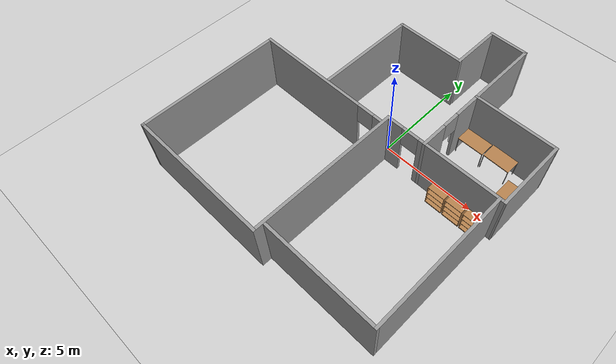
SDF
<sdf version="1.6">
 <world name="default">
  <model name="ground_plane">
   <static>1</static>
   <link name="link">
    <collision name="collision">
     <geometry><plane><normal>0 0 1</normal><size>100 100</size></plane></geometry>
     <surface><friction><ode><mu>100</mu><mu2>50</mu2></ode></friction></surface>
    </collision>
    <visual name="visual">
     <cast_shadows>0</cast_shadows>
     <geometry><plane><normal>0 0 1</normal><size>100 100</size></plane></geometry>
     <material>
      <script><uri>file://media/materials/scripts/gazebo.material</uri><name>Gazebo/Grey</name></script>
     </material>
    </visual>
   </link>
  </model>
  <model name="bh9f_lab">
   <pose>-0.31244 -0.65271 0 0 -0 0</pose>
   <link name="Wall_0">
    <pose>-3.1331 -0.253 0 0 -0 3.14159</pose>
    <visual name="Wall_0_Visual_0">
     <pose>-3.46145 0 1.55 0 -0 0</pose>
     <geometry><box><size>0.601096 0.15 3.1</size></box></geometry>
     <material>
      <script><uri>file://media/materials/scripts/gazebo.material</uri><name>Gazebo/Grey</name></script>
      <ambient>1 1 1 1</ambient>
     </material>
    </visual>
    <collision name="Wall_0_Collision_0">
     <geometry><box><size>0.601096 0.15 3.1</size></box></geometry>
     <pose>-3.46145 0 1.55 0 -0 0</pose>
    </collision>
    <visual name="Wall_0_Visual_1">
     <pose>0.750548 0 1.55 0 -0 0</pose>
     <geometry><box><size>6.0229 0.15 3.1</size></box></geometry>
     <material>
      <script><uri>file://media/materials/scripts/gazebo.material</uri><name>Gazebo/Grey</name></script>
      <ambient>1 1 1 1</ambient>
     </material>
    </visual>
    <collision name="Wall_0_Collision_1">
     <geometry><box><size>6.0229 0.15 3.1</size></box></geometry>
     <pose>0.750548 0 1.55 0 -0 0</pose>
    </collision>
    <visual name="Wall_0_Visual_3">
     <pose>-2.7109 0 2.55 0 -0 0</pose>
     <geometry><box><size>0.9 0.15 1.1</size></box></geometry>
     <material>
      <script><uri>file://media/materials/scripts/gazebo.material</uri><name>Gazebo/Grey</name></script>
      <ambient>1 1 1 1</ambient>
     </material>
    </visual>
    <collision name="Wall_0_Collision_3">
     <geometry><box><size>0.9 0.15 1.1</size></box></geometry>
     <pose>-2.7109 0 2.55 0 -0 0</pose>
    </collision>
   </link>
   <link name="Wall_12">
    <collision name="Wall_12_Collision">
     <geometry><box><size>7.44 0.15 3.1</size></box></geometry>
     <pose>0 0 1.55 0 -0 0</pose>
    </collision>
    <visual name="Wall_12_Visual">
     <pose>0 0 1.55 0 -0 0</pose>
     <geometry><box><size>7.44 0.15 3.1</size></box></geometry>
     <material>
      <script><uri>file://media/materials/scripts/gazebo.material</uri><name>Gazebo/Grey</name></script>
      <ambient>1 1 1 1</ambient>
     </material>
    </visual>
    <pose>6.5499 -3.516 0 0 0 -1.5708</pose>
   </link>
   <link name="Wall_14">
    <collision name="Wall_14_Collision">
     <geometry><box><size>6 0.15 3.1</size></box></geometry>
     <pose>0 0 1.55 0 -0 0</pose>
    </collision>
    <visual name="Wall_14_Visual">
     <pose>0 0 1.55 0 -0 0</pose>
     <geometry><box><size>6 0.15 3.1</size></box></geometry>
     <material>
      <script><uri>file://media/materials/scripts/gazebo.material</uri><name>Gazebo/Grey</name></script>
      <ambient>1 1 1 1</ambient>
     </material>
    </visual>
    <pose>3.6249 -7.161 0 0 -0 3.14159</pose>
   </link>
   <link name="Wall_16">
    <collision name="Wall_16_Collision">
     <geometry><box><size>3.83 0.15 3.1</size></box></geometry>
     <pose>0 0 1.55 0 -0 0</pose>
    </collision>
    <visual name="Wall_16_Visual">
     <pose>0 0 1.55 0 -0 0</pose>
     <geometry><box><size>3.83 0.15 3.1</size></box></geometry>
     <material>
      <script><uri>file://media/materials/scripts/gazebo.material</uri><name>Gazebo/Grey</name></script>
      <ambient>1 1 1 1</ambient>
     </material>
    </visual>
    <pose>6.8149 1.975 0 0 -0 1.56808</pose>
   </link>
   <link name="Wall_18">
    <collision name="Wall_18_Collision">
     <geometry><box><size>4.33 0.15 3.1</size></box></geometry>
     <pose>0 0 1.55 0 -0 0</pose>
    </collision>
    <visual name="Wall_18_Visual">
     <pose>0 0 1.55 0 -0 0</pose>
     <geometry><box><size>4.33 0.15 3.1</size></box></geometry>
     <material>
      <script><uri>file://media/materials/scripts/gazebo.material</uri><name>Gazebo/Grey</name></script>
      <ambient>1 1 1 1</ambient>
     </material>
    </visual>
    <pose>4.7299 3.815 0 0 -0 3.14159</pose>
   </link>
   <link name="Wall_2">
    <collision name="Wall_2_Collision">
     <geometry><box><size>7.542 0.15 3.1</size></box></geometry>
     <pose>0 0 1.55 0 -0 0</pose>
    </collision>
    <visual name="Wall_2_Visual">
     <pose>0 0 1.55 0 -0 0</pose>
     <geometry><box><size>7.542 0.15 3.1</size></box></geometry>
     <material>
      <script><uri>file://media/materials/scripts/gazebo.material</uri><name>Gazebo/Grey</name></script>
      <ambient>1 1 1 1</ambient>
     </material>
    </visual>
    <pose>-6.8201 -3.949 0 0 0 -1.5708</pose>
   </link>
   <link name="Wall_20">
    <pose>2.6379 3.89 0 0 -0 1.5708</pose>
    <visual name="Wall_20_Visual_0">
     <pose>-3.11825 0 1.55 0 -0 0</pose>
     <geometry><box><size>1.42351 0.15 3.1</size></box></geometry>
     <material>
      <script><uri>file://media/materials/scripts/gazebo.material</uri><name>Gazebo/Grey</name></script>
      <ambient>1 1 1 1</ambient>
     </material>
    </visual>
    <collision name="Wall_20_Collision_0">
     <geometry><box><size>1.42351 0.15 3.1</size></box></geometry>
     <pose>-3.11825 0 1.55 0 -0 0</pose>
    </collision>
    <visual name="Wall_20_Visual_1">
     <pose>1.16175 0 1.55 0 -0 0</pose>
     <geometry><box><size>5.33649 0.15 3.1</size></box></geometry>
     <material>
      <script><uri>file://media/materials/scripts/gazebo.material</uri><name>Gazebo/Grey</name></script>
      <ambient>1 1 1 1</ambient>
     </material>
    </visual>
    <collision name="Wall_20_Collision_1">
     <geometry><box><size>5.33649 0.15 3.1</size></box></geometry>
     <pose>1.16175 0 1.55 0 -0 0</pose>
    </collision>
    <visual name="Wall_20_Visual_3">
     <pose>-1.95649 0 2.55 0 -0 0</pose>
     <geometry><box><size>0.9 0.15 1.1</size></box></geometry>
     <material>
      <script><uri>file://media/materials/scripts/gazebo.material</uri><name>Gazebo/Grey</name></script>
      <ambient>1 1 1 1</ambient>
     </material>
    </visual>
    <collision name="Wall_20_Collision_3">
     <geometry><box><size>0.9 0.15 1.1</size></box></geometry>
     <pose>-1.95649 0 2.55 0 -0 0</pose>
    </collision>
   </link>
   <link name="Wall_24">
    <collision name="Wall_24_Collision">
     <geometry><box><size>2.089 0.15 3.1</size></box></geometry>
     <pose>0 0 1.55 0 -0 0</pose>
    </collision>
    <visual name="Wall_24_Visual">
     <pose>0 0 1.55 0 -0 0</pose>
     <geometry><box><size>2.089 0.15 3.1</size></box></geometry>
     <material>
      <script><uri>file://media/materials/scripts/gazebo.material</uri><name>Gazebo/Grey</name></script>
      <ambient>1 1 1 1</ambient>
     </material>
    </visual>
    <pose>1.6684 7.645 0 0 -0 3.14159</pose>
   </link>
   <link name="Wall_26">
    <collision name="Wall_26_Collision">
     <geometry><box><size>2.75 0.15 3.1</size></box></geometry>
     <pose>0 0 1.55 0 -0 0</pose>
    </collision>
    <visual name="Wall_26_Visual">
     <pose>0 0 1.55 0 -0 0</pose>
     <geometry><box><size>2.75 0.15 3.1</size></box></geometry>
     <material>
      <script><uri>file://media/materials/scripts/gazebo.material</uri><name>Gazebo/Grey</name></script>
      <ambient>1 1 1 1</ambient>
     </material>
    </visual>
    <pose>0.698898 6.345 0 0 0 -1.5708</pose>
   </link>
   <link name="Wall_28">
    <collision name="Wall_28_Collision">
     <geometry><box><size>3.75 0.15 3.1</size></box></geometry>
     <pose>0 0 1.55 0 -0 0</pose>
    </collision>
    <visual name="Wall_28_Visual">
     <pose>0 0 1.55 0 -0 0</pose>
     <geometry><box><size>3.75 0.15 3.1</size></box></geometry>
     <material>
      <script><uri>file://media/materials/scripts/gazebo.material</uri><name>Gazebo/Grey</name></script>
      <ambient>1 1 1 1</ambient>
     </material>
    </visual>
    <pose>-1.1011 5.045 0 0 -0 3.14159</pose>
   </link>
   <link name="Wall_30">
    <collision name="Wall_30_Collision">
     <geometry><box><size>5.41 0.15 3.1</size></box></geometry>
     <pose>0 0 1.55 0 -0 0</pose>
    </collision>
    <visual name="Wall_30_Visual">
     <pose>0 0 1.55 0 -0 0</pose>
     <geometry><box><size>5.41 0.15 3.1</size></box></geometry>
     <material>
      <script><uri>file://media/materials/scripts/gazebo.material</uri><name>Gazebo/Grey</name></script>
      <ambient>1 1 1 1</ambient>
     </material>
    </visual>
    <pose>-2.9011 2.415 0 0 0 -1.5708</pose>
   </link>
   <link name="Wall_4">
    <collision name="Wall_4_Collision">
     <geometry><box><size>7.53 0.15 3.1</size></box></geometry>
     <pose>0 0 1.55 0 -0 0</pose>
    </collision>
    <visual name="Wall_4_Visual">
     <pose>0 0 1.55 0 -0 0</pose>
     <geometry><box><size>7.53 0.15 3.1</size></box></geometry>
     <material>
      <script><uri>file://media/materials/scripts/gazebo.material</uri><name>Gazebo/Grey</name></script>
      <ambient>1 1 1 1</ambient>
     </material>
    </visual>
    <pose>-3.1301 -7.645 0 0 -0 0</pose>
   </link>
   <link name="Wall_6">
    <collision name="Wall_6_Collision">
     <geometry><box><size>7.93 0.15 3.1</size></box></geometry>
     <pose>0 0 1.55 0 -0 0</pose>
    </collision>
    <visual name="Wall_6_Visual">
     <pose>0 0 1.55 0 -0 0</pose>
     <geometry><box><size>7.93 0.15 3.1</size></box></geometry>
     <material>
      <script><uri>file://media/materials/scripts/gazebo.material</uri><name>Gazebo/Grey</name></script>
      <ambient>1 1 1 1</ambient>
     </material>
    </visual>
    <pose>0.559898 -3.755 0 0 -0 1.5708</pose>
   </link>
   <link name="Wall_8">
    <pose>3.6849 0.135 0 0 -0 0</pose>
    <visual name="Wall_8_Visual_0">
     <pose>-2.73161 0 1.55 0 -0 0</pose>
     <geometry><box><size>0.936778 0.15 3.1</size></box></geometry>
     <material>
      <script><uri>file://media/materials/scripts/gazebo.material</uri><name>Gazebo/Grey</name></script>
      <ambient>1 1 1 1</ambient>
     </material>
    </visual>
    <collision name="Wall_8_Collision_0">
     <geometry><box><size>0.936778 0.15 3.1</size></box></geometry>
     <pose>-2.73161 0 1.55 0 -0 0</pose>
    </collision>
    <visual name="Wall_8_Visual_1">
     <pose>0.918389 0 1.55 0 -0 0</pose>
     <geometry><box><size>4.56322 0.15 3.1</size></box></geometry>
     <material>
      <script><uri>file://media/materials/scripts/gazebo.material</uri><name>Gazebo/Grey</name></script>
      <ambient>1 1 1 1</ambient>
     </material>
    </visual>
    <collision name="Wall_8_Collision_1">
     <geometry><box><size>4.56322 0.15 3.1</size></box></geometry>
     <pose>0.918389 0 1.55 0 -0 0</pose>
    </collision>
    <visual name="Wall_8_Visual_3">
     <pose>-1.81322 0 2.55 0 -0 0</pose>
     <geometry><box><size>0.9 0.15 1.1</size></box></geometry>
     <material>
      <script><uri>file://media/materials/scripts/gazebo.material</uri><name>Gazebo/Grey</name></script>
      <ambient>1 1 1 1</ambient>
     </material>
    </visual>
    <collision name="Wall_8_Collision_3">
     <geometry><box><size>0.9 0.15 1.1</size></box></geometry>
     <pose>-1.81322 0 2.55 0 -0 0</pose>
    </collision>
   </link>
   <static>1</static>
  </model>
  <model name="bookcase">
   <link name="dummy_link">
    <inertial>
     <pose>0 0 0.335152 0 -0 0</pose>
     <mass>33</mass>
     <inertia>
      <ixx>7.54617</ixx>
      <ixy>0</ixy>
      <ixz>0</ixz>
      <iyy>2.12412</iyy>
      <iyz>1.60768e-16</iyz>
      <izz>5.42205</izz>
     </inertia>
    </inertial>
    <collision name="dummy_link_fixed_joint_lump__bookcase_bottom_link_collision_1">
     <pose>0 0 0.025 0 -0 0</pose>
     <geometry><box><size>0.39 1.39 0.05</size></box></geometry>
    </collision>
    <collision name="dummy_link_fixed_joint_lump__separation_4_link_collision_2">
     <pose>0 -0.345 0.21875 0 -0 0</pose>
     <geometry><box><size>0.39 0.015 0.33</size></box></geometry>
    </collision>
    <collision name="dummy_link_fixed_joint_lump__separation_5_link_collision_3">
     <pose>0 0 0.21875 0 -0 0</pose>
     <geometry><box><size>0.39 0.015 0.33</size></box></geometry>
    </collision>
    <collision name="dummy_link_fixed_joint_lump__separation_6_link_collision_4">
     <pose>0 0.345 0.21875 0 -0 0</pose>
     <geometry><box><size>0.39 0.015 0.33</size></box></geometry>
    </collision>
    <collision name="dummy_link_fixed_joint_lump__bookcase_left_collision_5">
     <pose>0 -0.72 0.395 0 -0 0</pose>
     <geometry><box><size>0.39 0.05 0.79</size></box></geometry>
    </collision>
    <collision name="dummy_link_fixed_joint_lump__bookcase_middle_collision_6">
     <pose>0 0 0.395 0 -0 0</pose>
     <geometry><box><size>0.39 1.39 0.015</size></box></geometry>
    </collision>
    <collision name="dummy_link_fixed_joint_lump__bookcase_right_collision_7">
     <pose>0 0.72 0.395 0 -0 0</pose>
     <geometry><box><size>0.39 0.05 0.79</size></box></geometry>
    </collision>
    <collision name="dummy_link_fixed_joint_lump__bookcase_top_link_collision_8">
     <pose>0 0 0.765 0 -0 0</pose>
     <geometry><box><size>0.39 1.39 0.05</size></box></geometry>
    </collision>
    <collision name="dummy_link_fixed_joint_lump__separation_1_link_collision_9">
     <pose>0 -0.345 0.57125 0 -0 0</pose>
     <geometry><box><size>0.39 0.015 0.33</size></box></geometry>
    </collision>
    <collision name="dummy_link_fixed_joint_lump__separation_2_link_collision_10">
     <pose>0 0 0.57125 0 -0 0</pose>
     <geometry><box><size>0.39 0.015 0.33</size></box></geometry>
    </collision>
    <collision name="dummy_link_fixed_joint_lump__separation_3_link_collision_11">
     <pose>0 0.345 0.57125 0 -0 0</pose>
     <geometry><box><size>0.39 0.015 0.33</size></box></geometry>
    </collision>
    <visual name="dummy_link_fixed_joint_lump__bookcase_bottom_link_visual_1">
     <pose>0 0 0.025 0 -0 0</pose>
     <geometry><box><size>0.39 1.39 0.05</size></box></geometry>
     <material>
      <script><name>Gazebo/White</name><uri>file://media/materials/scripts/gazebo.material</uri></script>
     </material>
    </visual>
    <visual name="dummy_link_fixed_joint_lump__separation_4_link_visual_2">
     <pose>0 -0.345 0.21875 0 -0 0</pose>
     <geometry><box><size>0.39 0.015 0.3375</size></box></geometry>
    </visual>
    <visual name="dummy_link_fixed_joint_lump__separation_5_link_visual_3">
     <pose>0 0 0.21875 0 -0 0</pose>
     <geometry><box><size>0.39 0.015 0.3375</size></box></geometry>
    </visual>
    <visual name="dummy_link_fixed_joint_lump__separation_6_link_visual_4">
     <pose>0 0.345 0.21875 0 -0 0</pose>
     <geometry><box><size>0.39 0.015 0.3375</size></box></geometry>
    </visual>
    <visual name="dummy_link_fixed_joint_lump__bookcase_left_visual_5">
     <pose>0 -0.72 0.395 0 -0 0</pose>
     <geometry><box><size>0.39 0.05 0.79</size></box></geometry>
     <material>
      <script><name>Gazebo/White</name><uri>file://media/materials/scripts/gazebo.material</uri></script>
     </material>
    </visual>
    <visual name="dummy_link_fixed_joint_lump__bookcase_middle_visual_6">
     <pose>0 0 0.395 0 -0 0</pose>
     <geometry><box><size>0.39 1.39 0.015</size></box></geometry>
     <material>
      <script><name>Gazebo/White</name><uri>file://media/materials/scripts/gazebo.material</uri></script>
     </material>
    </visual>
    <visual name="dummy_link_fixed_joint_lump__bookcase_right_visual_7">
     <pose>0 0.72 0.395 0 -0 0</pose>
     <geometry><box><size>0.39 0.05 0.79</size></box></geometry>
     <material>
      <script><name>Gazebo/White</name><uri>file://media/materials/scripts/gazebo.material</uri></script>
     </material>
    </visual>
    <visual name="dummy_link_fixed_joint_lump__bookcase_top_link_visual_8">
     <pose>0 0 0.765 0 -0 0</pose>
     <geometry><box><size>0.39 1.39 0.05</size></box></geometry>
     <material>
      <script><name>Gazebo/White</name><uri>file://media/materials/scripts/gazebo.material</uri></script>
     </material>
    </visual>
    <visual name="dummy_link_fixed_joint_lump__separation_1_link_visual_9">
     <pose>0 -0.345 0.57125 0 -0 0</pose>
     <geometry><box><size>0.39 0.015 0.3375</size></box></geometry>
    </visual>
    <visual name="dummy_link_fixed_joint_lump__separation_2_link_visual_10">
     <pose>0 0 0.57125 0 -0 0</pose>
     <geometry><box><size>0.39 0.015 0.3375</size></box></geometry>
    </visual>
    <visual name="dummy_link_fixed_joint_lump__separation_3_link_visual_11">
     <pose>0 0.345 0.57125 0 -0 0</pose>
     <geometry><box><size>0.39 0.015 0.3375</size></box></geometry>
    </visual>
   </link>
   <pose>2.03555 3.11584 -4e-06 -4e-06 -6e-06 -0.005442</pose>
  </model>
  <model name="table">
   <static>0</static>
   <link name="link">
    <collision name="surface">
     <pose>0 0 1 0 -0 0</pose>
     <geometry><box><size>1.5 0.8 0.03</size></box></geometry>
     <surface><friction><ode><mu>0.6</mu><mu2>0.6</mu2></ode></friction></surface>
    </collision>
    <visual name="visual1">
     <pose>0 0 1 0 -0 0</pose>
     <geometry><box><size>1.4 0.8 0.04</size></box></geometry>
     <material>
      <script><uri>file://media/materials/scripts/gazebo.material</uri><name>Gazebo/Wood</name></script>
     </material>
    </visual>
    <collision name="front_left_leg">
     <pose>0.68 0.38 0.5 0 -0 0</pose>
     <geometry><cylinder><radius>0.02</radius><length>1</length></cylinder></geometry>
    </collision>
    <visual name="front_left_leg">
     <pose>0.68 0.38 0.5 0 -0 0</pose>
     <geometry><cylinder><radius>0.02</radius><length>1</length></cylinder></geometry>
     <material>
      <script><uri>file://media/materials/scripts/gazebo.material</uri><name>Gazebo/Grey</name></script>
     </material>
    </visual>
    <collision name="front_right_leg">
     <pose>0.68 -0.38 0.5 0 -0 0</pose>
     <geometry><cylinder><radius>0.02</radius><length>1</length></cylinder></geometry>
    </collision>
    <visual name="front_right_leg">
     <pose>0.68 -0.38 0.5 0 -0 0</pose>
     <geometry><cylinder><radius>0.02</radius><length>1</length></cylinder></geometry>
     <material>
      <script><uri>file://media/materials/scripts/gazebo.material</uri><name>Gazebo/Grey</name></script>
     </material>
    </visual>
    <collision name="back_right_leg">
     <pose>-0.68 -0.38 0.5 0 -0 0</pose>
     <geometry><cylinder><radius>0.02</radius><length>1</length></cylinder></geometry>
    </collision>
    <visual name="back_right_leg">
     <pose>-0.68 -0.38 0.5 0 -0 0</pose>
     <geometry><cylinder><radius>0.02</radius><length>1</length></cylinder></geometry>
     <material>
      <script><uri>file://media/materials/scripts/gazebo.material</uri><name>Gazebo/Grey</name></script>
     </material>
    </visual>
    <collision name="back_left_leg">
     <pose>-0.68 0.38 0.5 0 -0 0</pose>
     <geometry><cylinder><radius>0.02</radius><length>1</length></cylinder></geometry>
    </collision>
    <visual name="back_left_leg">
     <pose>-0.68 0.38 0.5 0 -0 0</pose>
     <geometry><cylinder><radius>0.02</radius><length>1</length></cylinder></geometry>
     <material>
      <script><uri>file://media/materials/scripts/gazebo.material</uri><name>Gazebo/Grey</name></script>
     </material>
    </visual>
    <inertial>
     <inertia><ixx>1</ixx><ixy>0</ixy><ixz>0</ixz><iyy>1</iyy><iyz>0</iyz><izz>1</izz></inertia>
     <mass>1</mass>
    </inertial>
   </link>
   <pose>4.57969 2.60173 0.015107 5e-06 0.02158 -5e-06</pose>
  </model>
  <model name="table_clone">
   <static>0</static>
   <link name="link">
    <collision name="surface">
     <pose>0 0 1 0 -0 0</pose>
     <geometry><box><size>1.5 0.8 0.03</size></box></geometry>
     <surface><friction><ode><mu>0.6</mu><mu2>0.6</mu2></ode></friction></surface>
    </collision>
    <visual name="visual1">
     <pose>0 0 1 0 -0 0</pose>
     <geometry><box><size>1.4 0.8 0.04</size></box></geometry>
     <material>
      <script><uri>file://media/materials/scripts/gazebo.material</uri><name>Gazebo/Wood</name></script>
     </material>
    </visual>
    <collision name="front_left_leg">
     <pose>0.68 0.38 0.5 0 -0 0</pose>
     <geometry><cylinder><radius>0.02</radius><length>1</length></cylinder></geometry>
    </collision>
    <visual name="front_left_leg">
     <pose>0.68 0.38 0.5 0 -0 0</pose>
     <geometry><cylinder><radius>0.02</radius><length>1</length></cylinder></geometry>
     <material>
      <script><uri>file://media/materials/scripts/gazebo.material</uri><name>Gazebo/Grey</name></script>
     </material>
    </visual>
    <collision name="front_right_leg">
     <pose>0.68 -0.38 0.5 0 -0 0</pose>
     <geometry><cylinder><radius>0.02</radius><length>1</length></cylinder></geometry>
    </collision>
    <visual name="front_right_leg">
     <pose>0.68 -0.38 0.5 0 -0 0</pose>
     <geometry><cylinder><radius>0.02</radius><length>1</length></cylinder></geometry>
     <material>
      <script><uri>file://media/materials/scripts/gazebo.material</uri><name>Gazebo/Grey</name></script>
     </material>
    </visual>
    <collision name="back_right_leg">
     <pose>-0.68 -0.38 0.5 0 -0 0</pose>
     <geometry><cylinder><radius>0.02</radius><length>1</length></cylinder></geometry>
    </collision>
    <visual name="back_right_leg">
     <pose>-0.68 -0.38 0.5 0 -0 0</pose>
     <geometry><cylinder><radius>0.02</radius><length>1</length></cylinder></geometry>
     <material>
      <script><uri>file://media/materials/scripts/gazebo.material</uri><name>Gazebo/Grey</name></script>
     </material>
    </visual>
    <collision name="back_left_leg">
     <pose>-0.68 0.38 0.5 0 -0 0</pose>
     <geometry><cylinder><radius>0.02</radius><length>1</length></cylinder></geometry>
    </collision>
    <visual name="back_left_leg">
     <pose>-0.68 0.38 0.5 0 -0 0</pose>
     <geometry><cylinder><radius>0.02</radius><length>1</length></cylinder></geometry>
     <material>
      <script><uri>file://media/materials/scripts/gazebo.material</uri><name>Gazebo/Grey</name></script>
     </material>
    </visual>
    <inertial>
     <inertia><ixx>1</ixx><ixy>0</ixy><ixz>0</ixz><iyy>1</iyy><iyz>0</iyz><izz>1</izz></inertia>
     <mass>1</mass>
    </inertial>
   </link>
   <pose>3.15046 2.58517 -3e-06 -1e-06 -4e-06 5e-06</pose>
  </model>
  <model name="table_clone_0">
   <static>0</static>
   <link name="link">
    <collision name="surface">
     <pose>0 0 1 0 -0 0</pose>
     <geometry><box><size>1.5 0.8 0.03</size></box></geometry>
     <surface><friction><ode><mu>0.6</mu><mu2>0.6</mu2></ode></friction></surface>
    </collision>
    <visual name="visual1">
     <pose>0 0 1 0 -0 0</pose>
     <geometry><box><size>1.4 0.8 0.04</size></box></geometry>
     <material>
      <script><uri>file://media/materials/scripts/gazebo.material</uri><name>Gazebo/Wood</name></script>
     </material>
    </visual>
    <collision name="front_left_leg">
     <pose>0.68 0.38 0.5 0 -0 0</pose>
     <geometry><cylinder><radius>0.02</radius><length>1</length></cylinder></geometry>
    </collision>
    <visual name="front_left_leg">
     <pose>0.68 0.38 0.5 0 -0 0</pose>
     <geometry><cylinder><radius>0.02</radius><length>1</length></cylinder></geometry>
     <material>
      <script><uri>file://media/materials/scripts/gazebo.material</uri><name>Gazebo/Grey</name></script>
     </material>
    </visual>
    <collision name="front_right_leg">
     <pose>0.68 -0.38 0.5 0 -0 0</pose>
     <geometry><cylinder><radius>0.02</radius><length>1</length></cylinder></geometry>
    </collision>
    <visual name="front_right_leg">
     <pose>0.68 -0.38 0.5 0 -0 0</pose>
     <geometry><cylinder><radius>0.02</radius><length>1</length></cylinder></geometry>
     <material>
      <script><uri>file://media/materials/scripts/gazebo.material</uri><name>Gazebo/Grey</name></script>
     </material>
    </visual>
    <collision name="back_right_leg">
     <pose>-0.68 -0.38 0.5 0 -0 0</pose>
     <geometry><cylinder><radius>0.02</radius><length>1</length></cylinder></geometry>
    </collision>
    <visual name="back_right_leg">
     <pose>-0.68 -0.38 0.5 0 -0 0</pose>
     <geometry><cylinder><radius>0.02</radius><length>1</length></cylinder></geometry>
     <material>
      <script><uri>file://media/materials/scripts/gazebo.material</uri><name>Gazebo/Grey</name></script>
     </material>
    </visual>
    <collision name="back_left_leg">
     <pose>-0.68 0.38 0.5 0 -0 0</pose>
     <geometry><cylinder><radius>0.02</radius><length>1</length></cylinder></geometry>
    </collision>
    <visual name="back_left_leg">
     <pose>-0.68 0.38 0.5 0 -0 0</pose>
     <geometry><cylinder><radius>0.02</radius><length>1</length></cylinder></geometry>
     <material>
      <script><uri>file://media/materials/scripts/gazebo.material</uri><name>Gazebo/Grey</name></script>
     </material>
    </visual>
    <inertial>
     <inertia><ixx>1</ixx><ixy>0</ixy><ixz>0</ixz><iyy>1</iyy><iyz>0</iyz><izz>1</izz></inertia>
     <mass>1</mass>
    </inertial>
   </link>
   <pose>5.67387 0.001172 -2.7e-05 -1e-06 -3e-06 -0.002717</pose>
  </model>
  <model name="table_clone_1">
   <static>0</static>
   <link name="link">
    <collision name="surface">
     <pose>0 0 1 0 -0 0</pose>
     <geometry><box><size>1.5 0.8 0.03</size></box></geometry>
     <surface><friction><ode><mu>0.6</mu><mu2>0.6</mu2></ode></friction></surface>
    </collision>
    <visual name="visual1">
     <pose>0 0 1 0 -0 0</pose>
     <geometry><box><size>1.4 0.8 0.04</size></box></geometry>
     <material>
      <script><uri>file://media/materials/scripts/gazebo.material</uri><name>Gazebo/Wood</name></script>
     </material>
    </visual>
    <collision name="front_left_leg">
     <pose>0.68 0.38 0.5 0 -0 0</pose>
     <geometry><cylinder><radius>0.02</radius><length>1</length></cylinder></geometry>
    </collision>
    <visual name="front_left_leg">
     <pose>0.68 0.38 0.5 0 -0 0</pose>
     <geometry><cylinder><radius>0.02</radius><length>1</length></cylinder></geometry>
     <material>
      <script><uri>file://media/materials/scripts/gazebo.material</uri><name>Gazebo/Grey</name></script>
     </material>
    </visual>
    <collision name="front_right_leg">
     <pose>0.68 -0.38 0.5 0 -0 0</pose>
     <geometry><cylinder><radius>0.02</radius><length>1</length></cylinder></geometry>
    </collision>
    <visual name="front_right_leg">
     <pose>0.68 -0.38 0.5 0 -0 0</pose>
     <geometry><cylinder><radius>0.02</radius><length>1</length></cylinder></geometry>
     <material>
      <script><uri>file://media/materials/scripts/gazebo.material</uri><name>Gazebo/Grey</name></script>
     </material>
    </visual>
    <collision name="back_right_leg">
     <pose>-0.68 -0.38 0.5 0 -0 0</pose>
     <geometry><cylinder><radius>0.02</radius><length>1</length></cylinder></geometry>
    </collision>
    <visual name="back_right_leg">
     <pose>-0.68 -0.38 0.5 0 -0 0</pose>
     <geometry><cylinder><radius>0.02</radius><length>1</length></cylinder></geometry>
     <material>
      <script><uri>file://media/materials/scripts/gazebo.material</uri><name>Gazebo/Grey</name></script>
     </material>
    </visual>
    <collision name="back_left_leg">
     <pose>-0.68 0.38 0.5 0 -0 0</pose>
     <geometry><cylinder><radius>0.02</radius><length>1</length></cylinder></geometry>
    </collision>
    <visual name="back_left_leg">
     <pose>-0.68 0.38 0.5 0 -0 0</pose>
     <geometry><cylinder><radius>0.02</radius><length>1</length></cylinder></geometry>
     <material>
      <script><uri>file://media/materials/scripts/gazebo.material</uri><name>Gazebo/Grey</name></script>
     </material>
    </visual>
    <inertial>
     <inertia><ixx>1</ixx><ixy>0</ixy><ixz>0</ixz><iyy>1</iyy><iyz>0</iyz><izz>1</izz></inertia>
     <mass>1</mass>
    </inertial>
   </link>
   <pose>4.2446 -0.006714 0.015089 -1e-06 -0.021568 -0.002717</pose>
  </model>
  <model name="table_clone_2">
   <static>0</static>
   <link name="link">
    <collision name="surface">
     <pose>0 0 1 0 -0 0</pose>
     <geometry><box><size>1.5 0.8 0.03</size></box></geometry>
     <surface><friction><ode><mu>0.6</mu><mu2>0.6</mu2></ode></friction></surface>
    </collision>
    <visual name="visual1">
     <pose>0 0 1 0 -0 0</pose>
     <geometry><box><size>1.4 0.8 0.04</size></box></geometry>
     <material>
      <script><uri>file://media/materials/scripts/gazebo.material</uri><name>Gazebo/Wood</name></script>
     </material>
    </visual>
    <collision name="front_left_leg">
     <pose>0.68 0.38 0.5 0 -0 0</pose>
     <geometry><cylinder><radius>0.02</radius><length>1</length></cylinder></geometry>
    </collision>
    <visual name="front_left_leg">
     <pose>0.68 0.38 0.5 0 -0 0</pose>
     <geometry><cylinder><radius>0.02</radius><length>1</length></cylinder></geometry>
     <material>
      <script><uri>file://media/materials/scripts/gazebo.material</uri><name>Gazebo/Grey</name></script>
     </material>
    </visual>
    <collision name="front_right_leg">
     <pose>0.68 -0.38 0.5 0 -0 0</pose>
     <geometry><cylinder><radius>0.02</radius><length>1</length></cylinder></geometry>
    </collision>
    <visual name="front_right_leg">
     <pose>0.68 -0.38 0.5 0 -0 0</pose>
     <geometry><cylinder><radius>0.02</radius><length>1</length></cylinder></geometry>
     <material>
      <script><uri>file://media/materials/scripts/gazebo.material</uri><name>Gazebo/Grey</name></script>
     </material>
    </visual>
    <collision name="back_right_leg">
     <pose>-0.68 -0.38 0.5 0 -0 0</pose>
     <geometry><cylinder><radius>0.02</radius><length>1</length></cylinder></geometry>
    </collision>
    <visual name="back_right_leg">
     <pose>-0.68 -0.38 0.5 0 -0 0</pose>
     <geometry><cylinder><radius>0.02</radius><length>1</length></cylinder></geometry>
     <material>
      <script><uri>file://media/materials/scripts/gazebo.material</uri><name>Gazebo/Grey</name></script>
     </material>
    </visual>
    <collision name="back_left_leg">
     <pose>-0.68 0.38 0.5 0 -0 0</pose>
     <geometry><cylinder><radius>0.02</radius><length>1</length></cylinder></geometry>
    </collision>
    <visual name="back_left_leg">
     <pose>-0.68 0.38 0.5 0 -0 0</pose>
     <geometry><cylinder><radius>0.02</radius><length>1</length></cylinder></geometry>
     <material>
      <script><uri>file://media/materials/scripts/gazebo.material</uri><name>Gazebo/Grey</name></script>
     </material>
    </visual>
    <inertial>
     <inertia><ixx>1</ixx><ixy>0</ixy><ixz>0</ixz><iyy>1</iyy><iyz>0</iyz><izz>1</izz></inertia>
     <mass>1</mass>
    </inertial>
   </link>
   <pose>5.94644 1.1813 -3e-06 -0 -4e-06 -1.56858</pose>
  </model>
  <model name="bookshelf_0">
   <static>1</static>
   <link name="link">
    <inertial><mass>1</mass></inertial>
    <collision name="back">
     <pose>0 0.005 0.6 0 -0 0</pose>
     <geometry><box><size>0.9 0.01 1.2</size></box></geometry>
    </collision>
    <visual name="visual1">
     <pose>0 0.005 0.6 0 -0 0</pose>
     <geometry><box><size>0.9 0.01 1.2</size></box></geometry>
     <material>
      <script><uri>file://media/materials/scripts/gazebo.material</uri><name>Gazebo/Wood</name></script>
     </material>
    </visual>
    <collision name="left_side">
     <pose>0.45 -0.195 0.6 0 -0 0</pose>
     <geometry><box><size>0.02 0.4 1.2</size></box></geometry>
    </collision>
    <visual name="visual2">
     <pose>0.45 -0.195 0.6 0 -0 0</pose>
     <geometry><box><size>0.02 0.4 1.2</size></box></geometry>
     <material>
      <script><uri>file://media/materials/scripts/gazebo.material</uri><name>Gazebo/Wood</name></script>
     </material>
    </visual>
    <collision name="right_side">
     <pose>-0.45 -0.195 0.6 0 -0 0</pose>
     <geometry><box><size>0.02 0.4 1.2</size></box></geometry>
    </collision>
    <visual name="visual3">
     <pose>-0.45 -0.195 0.6 0 -0 0</pose>
     <geometry><box><size>0.02 0.4 1.2</size></box></geometry>
     <material>
      <script><uri>file://media/materials/scripts/gazebo.material</uri><name>Gazebo/Wood</name></script>
     </material>
    </visual>
    <collision name="bottom">
     <pose>0 -0.195 0.03 0 -0 0</pose>
     <geometry><box><size>0.88 0.4 0.06</size></box></geometry>
    </collision>
    <visual name="visual4">
     <pose>0 -0.195 0.03 0 -0 0</pose>
     <geometry><box><size>0.88 0.4 0.06</size></box></geometry>
     <material>
      <script><uri>file://media/materials/scripts/gazebo.material</uri><name>Gazebo/Wood</name></script>
     </material>
    </visual>
    <collision name="top">
     <pose>0 -0.195 1.19 0 -0 0</pose>
     <geometry><box><size>0.88 0.4 0.02</size></box></geometry>
    </collision>
    <visual name="visual5">
     <pose>0 -0.195 1.19 0 -0 0</pose>
     <geometry><box><size>0.88 0.4 0.02</size></box></geometry>
     <material>
      <script><uri>file://media/materials/scripts/gazebo.material</uri><name>Gazebo/Wood</name></script>
     </material>
    </visual>
    <collision name="low_shelf">
     <pose>0 -0.195 0.43 0 -0 0</pose>
     <geometry><box><size>0.88 0.4 0.02</size></box></geometry>
    </collision>
    <visual name="visual6">
     <pose>0 -0.195 0.43 0 -0 0</pose>
     <geometry><box><size>0.88 0.4 0.02</size></box></geometry>
     <material>
      <script><uri>file://media/materials/scripts/gazebo.material</uri><name>Gazebo/Wood</name></script>
     </material>
    </visual>
    <collision name="high_shelf">
     <pose>0 -0.195 0.8 0 -0 0</pose>
     <geometry><box><size>0.88 0.4 0.02</size></box></geometry>
    </collision>
    <visual name="visual7">
     <pose>0 -0.195 0.8 0 -0 0</pose>
     <geometry><box><size>0.88 0.4 0.02</size></box></geometry>
     <material>
      <script><uri>file://media/materials/scripts/gazebo.material</uri><name>Gazebo/Wood</name></script>
     </material>
    </visual>
   </link>
   <pose>5.65196 -0.667427 0 0 -0 0</pose>
  </model>
  <model name="bookshelf_0_clone">
   <static>1</static>
   <link name="link">
    <inertial><mass>1</mass></inertial>
    <collision name="back">
     <pose>0 0.005 0.6 0 -0 0</pose>
     <geometry><box><size>0.9 0.01 1.2</size></box></geometry>
    </collision>
    <visual name="visual1">
     <pose>0 0.005 0.6 0 -0 0</pose>
     <geometry><box><size>0.9 0.01 1.2</size></box></geometry>
     <material>
      <script><uri>file://media/materials/scripts/gazebo.material</uri><name>Gazebo/Wood</name></script>
     </material>
    </visual>
    <collision name="left_side">
     <pose>0.45 -0.195 0.6 0 -0 0</pose>
     <geometry><box><size>0.02 0.4 1.2</size></box></geometry>
    </collision>
    <visual name="visual2">
     <pose>0.45 -0.195 0.6 0 -0 0</pose>
     <geometry><box><size>0.02 0.4 1.2</size></box></geometry>
     <material>
      <script><uri>file://media/materials/scripts/gazebo.material</uri><name>Gazebo/Wood</name></script>
     </material>
    </visual>
    <collision name="right_side">
     <pose>-0.45 -0.195 0.6 0 -0 0</pose>
     <geometry><box><size>0.02 0.4 1.2</size></box></geometry>
    </collision>
    <visual name="visual3">
     <pose>-0.45 -0.195 0.6 0 -0 0</pose>
     <geometry><box><size>0.02 0.4 1.2</size></box></geometry>
     <material>
      <script><uri>file://media/materials/scripts/gazebo.material</uri><name>Gazebo/Wood</name></script>
     </material>
    </visual>
    <collision name="bottom">
     <pose>0 -0.195 0.03 0 -0 0</pose>
     <geometry><box><size>0.88 0.4 0.06</size></box></geometry>
    </collision>
    <visual name="visual4">
     <pose>0 -0.195 0.03 0 -0 0</pose>
     <geometry><box><size>0.88 0.4 0.06</size></box></geometry>
     <material>
      <script><uri>file://media/materials/scripts/gazebo.material</uri><name>Gazebo/Wood</name></script>
     </material>
    </visual>
    <collision name="top">
     <pose>0 -0.195 1.19 0 -0 0</pose>
     <geometry><box><size>0.88 0.4 0.02</size></box></geometry>
    </collision>
    <visual name="visual5">
     <pose>0 -0.195 1.19 0 -0 0</pose>
     <geometry><box><size>0.88 0.4 0.02</size></box></geometry>
     <material>
      <script><uri>file://media/materials/scripts/gazebo.material</uri><name>Gazebo/Wood</name></script>
     </material>
    </visual>
    <collision name="low_shelf">
     <pose>0 -0.195 0.43 0 -0 0</pose>
     <geometry><box><size>0.88 0.4 0.02</size></box></geometry>
    </collision>
    <visual name="visual6">
     <pose>0 -0.195 0.43 0 -0 0</pose>
     <geometry><box><size>0.88 0.4 0.02</size></box></geometry>
     <material>
      <script><uri>file://media/materials/scripts/gazebo.material</uri><name>Gazebo/Wood</name></script>
     </material>
    </visual>
    <collision name="high_shelf">
     <pose>0 -0.195 0.8 0 -0 0</pose>
     <geometry><box><size>0.88 0.4 0.02</size></box></geometry>
    </collision>
    <visual name="visual7">
     <pose>0 -0.195 0.8 0 -0 0</pose>
     <geometry><box><size>0.88 0.4 0.02</size></box></geometry>
     <material>
      <script><uri>file://media/materials/scripts/gazebo.material</uri><name>Gazebo/Wood</name></script>
     </material>
    </visual>
   </link>
   <pose>4.6703 -0.667427 0 0 -0 0</pose>
  </model>
  <model name="bookshelf_0_clone_0">
   <static>1</static>
   <link name="link">
    <inertial><mass>1</mass></inertial>
    <collision name="back">
     <pose>0 0.005 0.6 0 -0 0</pose>
     <geometry><box><size>0.9 0.01 1.2</size></box></geometry>
    </collision>
    <visual name="visual1">
     <pose>0 0.005 0.6 0 -0 0</pose>
     <geometry><box><size>0.9 0.01 1.2</size></box></geometry>
     <material>
      <script><uri>file://media/materials/scripts/gazebo.material</uri><name>Gazebo/Wood</name></script>
     </material>
    </visual>
    <collision name="left_side">
     <pose>0.45 -0.195 0.6 0 -0 0</pose>
     <geometry><box><size>0.02 0.4 1.2</size></box></geometry>
    </collision>
    <visual name="visual2">
     <pose>0.45 -0.195 0.6 0 -0 0</pose>
     <geometry><box><size>0.02 0.4 1.2</size></box></geometry>
     <material>
      <script><uri>file://media/materials/scripts/gazebo.material</uri><name>Gazebo/Wood</name></script>
     </material>
    </visual>
    <collision name="right_side">
     <pose>-0.45 -0.195 0.6 0 -0 0</pose>
     <geometry><box><size>0.02 0.4 1.2</size></box></geometry>
    </collision>
    <visual name="visual3">
     <pose>-0.45 -0.195 0.6 0 -0 0</pose>
     <geometry><box><size>0.02 0.4 1.2</size></box></geometry>
     <material>
      <script><uri>file://media/materials/scripts/gazebo.material</uri><name>Gazebo/Wood</name></script>
     </material>
    </visual>
    <collision name="bottom">
     <pose>0 -0.195 0.03 0 -0 0</pose>
     <geometry><box><size>0.88 0.4 0.06</size></box></geometry>
    </collision>
    <visual name="visual4">
     <pose>0 -0.195 0.03 0 -0 0</pose>
     <geometry><box><size>0.88 0.4 0.06</size></box></geometry>
     <material>
      <script><uri>file://media/materials/scripts/gazebo.material</uri><name>Gazebo/Wood</name></script>
     </material>
    </visual>
    <collision name="top">
     <pose>0 -0.195 1.19 0 -0 0</pose>
     <geometry><box><size>0.88 0.4 0.02</size></box></geometry>
    </collision>
    <visual name="visual5">
     <pose>0 -0.195 1.19 0 -0 0</pose>
     <geometry><box><size>0.88 0.4 0.02</size></box></geometry>
     <material>
      <script><uri>file://media/materials/scripts/gazebo.material</uri><name>Gazebo/Wood</name></script>
     </material>
    </visual>
    <collision name="low_shelf">
     <pose>0 -0.195 0.43 0 -0 0</pose>
     <geometry><box><size>0.88 0.4 0.02</size></box></geometry>
    </collision>
    <visual name="visual6">
     <pose>0 -0.195 0.43 0 -0 0</pose>
     <geometry><box><size>0.88 0.4 0.02</size></box></geometry>
     <material>
      <script><uri>file://media/materials/scripts/gazebo.material</uri><name>Gazebo/Wood</name></script>
     </material>
    </visual>
    <collision name="high_shelf">
     <pose>0 -0.195 0.8 0 -0 0</pose>
     <geometry><box><size>0.88 0.4 0.02</size></box></geometry>
    </collision>
    <visual name="visual7">
     <pose>0 -0.195 0.8 0 -0 0</pose>
     <geometry><box><size>0.88 0.4 0.02</size></box></geometry>
     <material>
      <script><uri>file://media/materials/scripts/gazebo.material</uri><name>Gazebo/Wood</name></script>
     </material>
    </visual>
   </link>
   <pose>3.69868 -0.667427 0 0 -0 0</pose>
  </model>
 </world>
</sdf>
